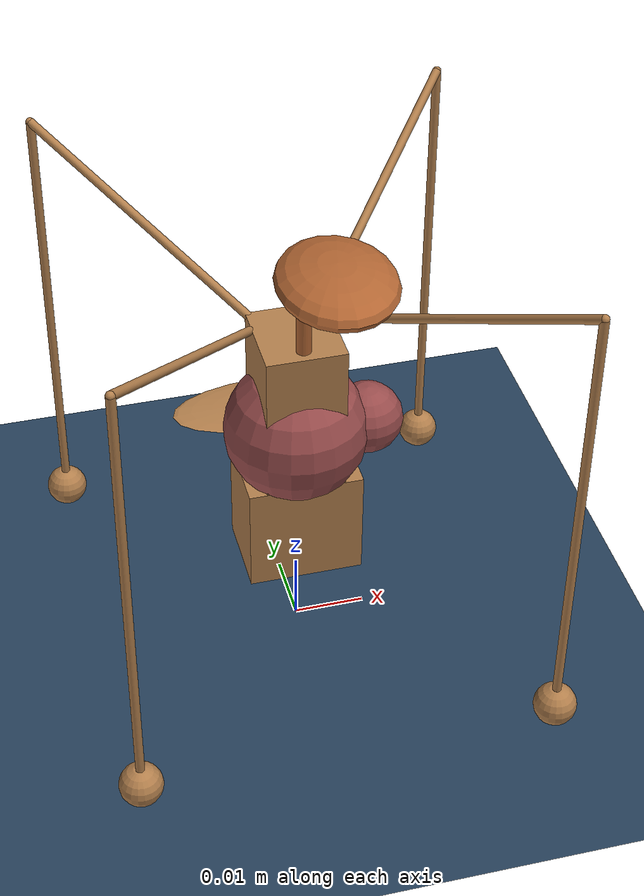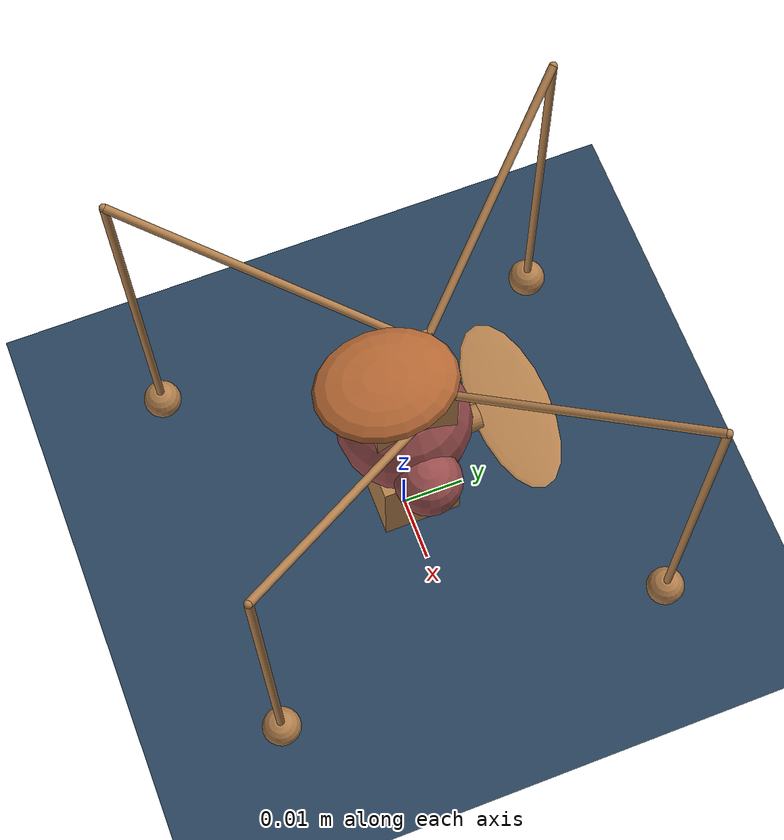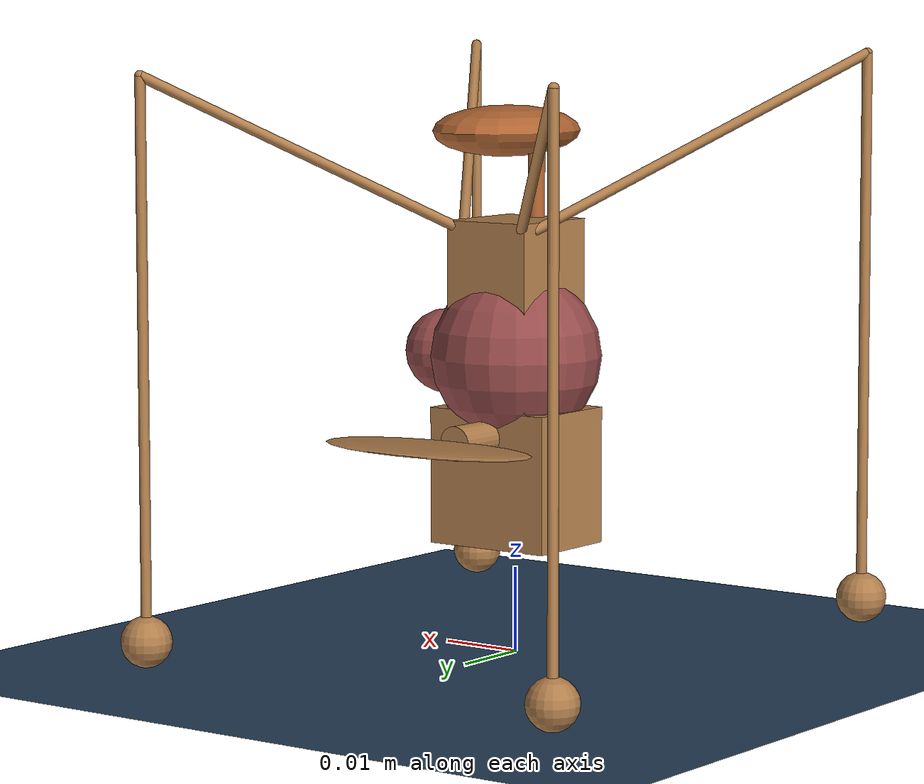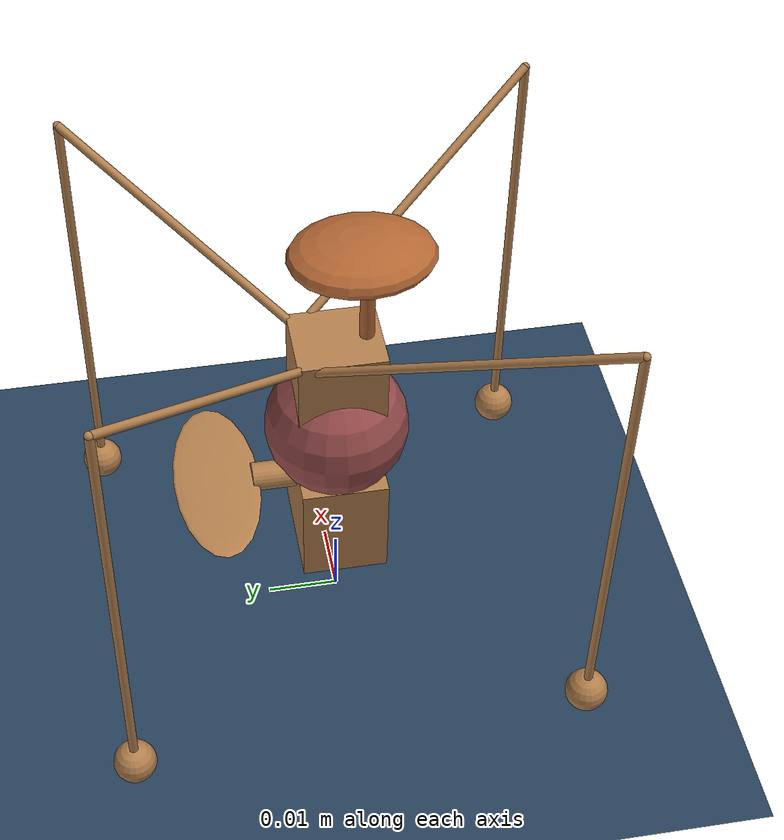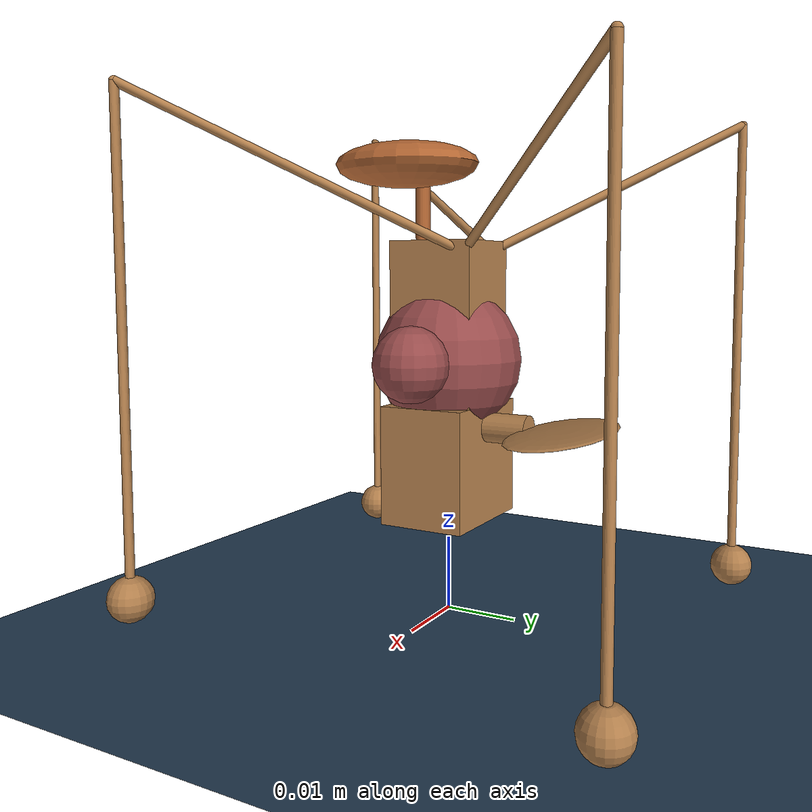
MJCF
<mujoco model="KatitaV5">

    <compiler coordinate="global" />

    <asset>
        <material name="grid1cm" reflectance=".2" texrepeat="100 100" texture="grid" texuniform="true" />
    </asset>

    <visual>
        <global offheight="1440" offwidth="2560" />
    </visual>

    <option timestep="0.0002" />

    <default>

        <geom density="7700" material="self" />
    </default>

    <worldbody>

        <light name="light" pos="0 0 1" />

        <geom material="grid1cm" name="floor" pos="0 0 0" size="0.5 0.5 0.01" type="plane" />

	<camera name="Global" pos="0 -0.2 1.1" />
        <camera mode="fixed" name="Spectator" pos="0 -0.4 .25" quat="0.819152 0.5735764 0 0" />

        <body name="jitterbug" pos="0 0 0.035" quat="1 0 0 0">
            <joint name="root" type="free" />

            <geom density="38.5" name="coreBody1" pos="0 0 .04" size=".0055 .006 .011" type="box" />
            <geom density="770" name="coreBody2" pos="0 0 .021" size=".008 .006 .008" type="box" />
            <geom fromto="0 0 .026 0 .012 .026" name="screw1" size=".002" type="cylinder" />
            <geom name="screw2" pos="0 .017 .026" size=".014 .006 .0005" type="ellipsoid" />

            <body name="leg2upper">
                <geom fromto=".0287 -.0308 .07 .005 .0035 .05" size=".00061" type="cylinder" />
                <geom pos=".0287 -.0308 .07" size=".00061" type="sphere" />
                <joint axis="-2.32 -3.68 0" damping="0.00001" name="joint1Leg2" pos=".003 .0035 .049" stiffness="0.4" type="hinge" />

                <body name="leg2lower">
                    <geom fromto=".0287 -.0308 0.005 .0287 -.0308 .07" size=".00061" type="cylinder" />
                    <geom density="1100" name="foot2" pos=".0287 -.0308 .005" size=".003" type="sphere" />
                    <joint axis="-2.32 -3.68 0" damping="0.00001" name="joint2Leg2" pos=".0287 -.0308 .068" stiffness="0.4" type="hinge" />
                </body>
            </body>

            <body name="leg3upper">
                <geom fromto="-.0287 -.0308 .07 -.005 .0035 .05" size=".00061" type="cylinder" />
                <geom pos="-.0287 -.0308 .07" size=".00061" type="sphere" />
                <joint axis="2.32 -3.68 0" damping="0.00001" name="joint1Leg3" pos="-.003 .0035 .049" stiffness="0.4" type="hinge" />

                <body name="leg3lower">
                    <geom fromto="-.0287 -.0308 0.005 -.0287 -.0308 .07" size=".00061" type="cylinder" />
                    <geom density="1100" name="foot3" pos="-.0287 -.0308 .005" size=".003" type="sphere" />
                    <joint axis="2.32 -3.68 0" damping="0.00001" name="joint2Leg3" pos="-.0287 -.0308 .068" stiffness="0.4" type="hinge" />
                </body>
            </body>

            <body name="leg1upper">
                <geom fromto=".0287 .0328 .068 .003 .0035 .049" size=".00061" type="cylinder" />
                <geom pos="0.0287 0.0328 0.068" size=".00061" type="sphere" />
                <joint axis="2.32 -2.68 0" damping="0.00001" name="joint1Leg1" pos=".003 .0035 .049" stiffness="0.4" type="hinge" />

                <body name="leg1lower">
                    <geom fromto=".0287 .0328 0.003 .0287 .0328 .068" size=".00061" type="cylinder" />
                    <geom density="1100" name="foot1" pos=".0287 .0328 .003" size=".003" type="sphere" />
                    <joint axis="2.32 -2.68 0" damping="0.00001" name="joint2Leg1" pos=".0287 .0328 .068" stiffness="0.4" type="hinge" />
                </body>
            </body>

            <body name="leg4upper">
                <geom fromto="-.0287 .0328 .068 -.003 .0035 .049" size=".00061" type="cylinder" />
                <geom pos="-.0287 .0328 .068" size=".00061" type="sphere" />
                <joint axis="-2.32 -2.68 0" damping="0.00001" name="joint1Leg4" pos="-.003 .0035 .049" stiffness="0.4" type="hinge" />

                <body name="leg4lower">
                    <geom fromto="-.0287 .0328 0.003 -.0287 .0328 .068" size=".00061" type="cylinder" />
                    <geom density="1100" name="foot4" pos="-.0287 .0328 .003" size=".003" type="sphere" />
                    <joint axis="-2.32 -2.68 0" damping="0.00001" name="joint2Leg4" pos="-.0287 .0328 .068" stiffness="0.4" type="hinge" />
                </body>
            </body>

            <body name="mass" pos="0 -.004 .061" quat="1 0 0 0">
                <geom fromto="0 -.004 .05 0 -.004 .0625" material="effector" name="threadMass" size=".001" type="cylinder" />
                <geom material="effector" name="mass" pos=".0043 -.004 .061" size="0.008 0.01 0.003" type="ellipsoid" />
                <joint axis="0 0 1" name="jointMass" pos="0 -.004 .05" type="hinge" />
            </body>

        </body>

        <body name="target" pos="0 0 0.035">
            <geom conaffinity="0" contype="0" material="target" name="target" pos="0 0 0.035" size=".01" type="sphere" />
            <geom conaffinity="0" contype="0" density="0" material="target" name="targetPointer" pos="0.01 0 0.035" size=".005" type="sphere" />
        </body>

    </worldbody>

    <sensor>
        <framelinvel name="jitterbug_framelinvel" objname="jitterbug" objtype="body" />
    </sensor>

    <actuator>

        <general biasprm="0 0 -0.8" biastype="affine" ctrllimited="true" ctrlrange="-1 1" dynprm="0.1 0 0" dyntype="none" gainprm="1 0 0" gaintype="fixed" gear="0.00833" joint="jointMass" />
    </actuator>

<asset>
      <texture builtin="gradient" height="800" mark="random" markrgb="1 1 1" name="skybox" rgb1=".4 .6 .8" rgb2="0 0 0" type="skybox" width="800" />
  </asset>
<visual>
    <headlight ambient=".4 .4 .4" diffuse=".8 .8 .8" specular="0.1 0.1 0.1" />
    <map znear=".01" />
    <quality shadowsize="2048" />
  </visual>
<asset>
    <texture builtin="checker" height="300" mark="edge" markrgb=".2 .3 .4" name="grid" rgb1=".1 .2 .3" rgb2=".2 .3 .4" type="2d" width="300" />
    <material name="grid" reflectance=".2" texrepeat="1 1" texture="grid" texuniform="true" />
    <material name="self" rgba=".7 .5 .3 1" />
    <material name="self_default" rgba=".7 .5 .3 1" />
    <material name="self_highlight" rgba="0 .5 .3 1" />
    <material name="effector" rgba=".7 .4 .2 1" />
    <material name="effector_default" rgba=".7 .4 .2 1" />
    <material name="effector_highlight" rgba="0 .5 .3 1" />
    <material name="decoration" rgba=".3 .5 .7 1" />
    <material name="eye" rgba="0 .2 1 1" />
    <material name="target" rgba=".6 .3 .3 1" />
    <material name="target_default" rgba=".6 .3 .3 1" />
    <material name="target_highlight" rgba=".6 .3 .3 .4" />
    <material name="site" rgba=".5 .5 .5 .3" />
  </asset>
</mujoco>
